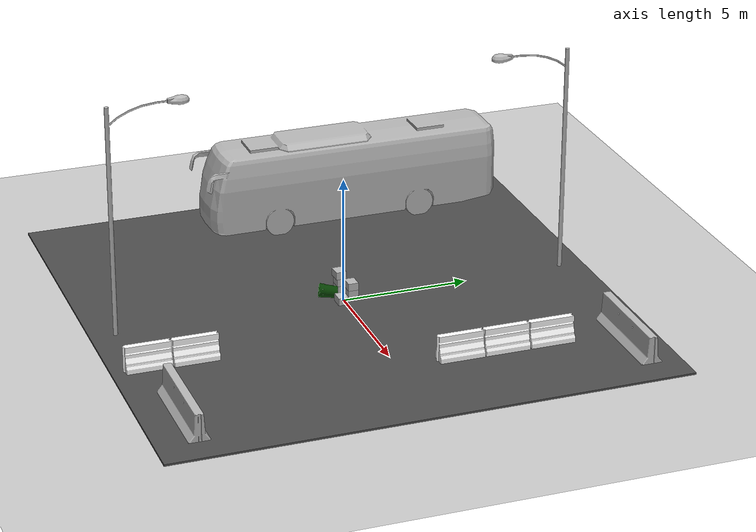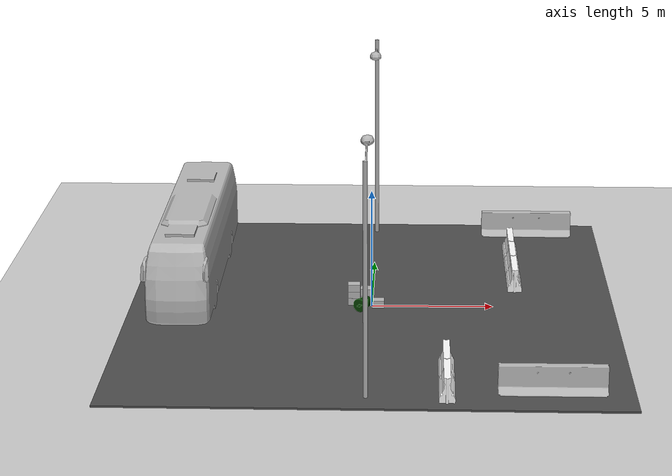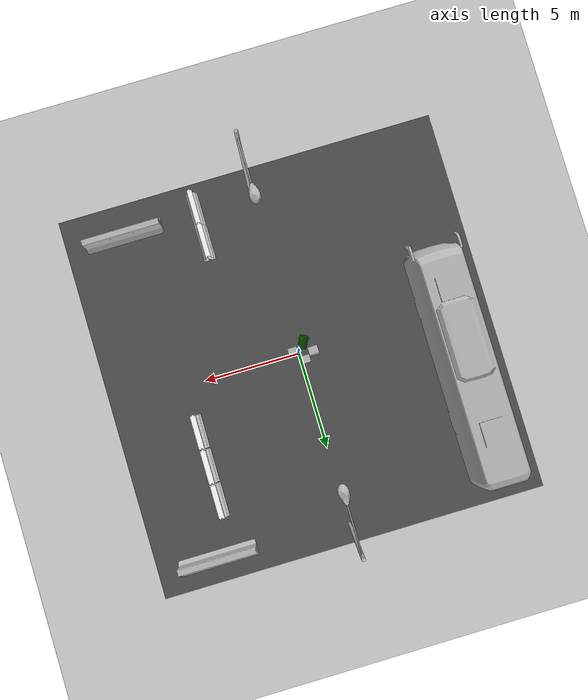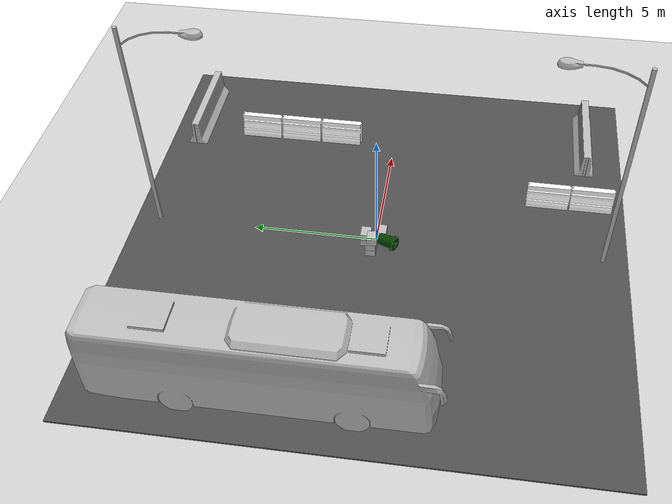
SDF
<sdf version="1.7">
 <world name="default">
  <light name="sun" type="directional">
   <pose>0 0 10 0 -0 0</pose>
   <diffuse>0.8 0.8 0.8 1</diffuse>
   <specular>0.2 0.2 0.2 1</specular>
   <attenuation>
    <range>1000</range>
    <constant>0.9</constant>
    <linear>0.01</linear>
    <quadratic>0.001</quadratic>
   </attenuation>
   <direction>-0.5 0.1 -0.9</direction>
   <spot><inner_angle>0</inner_angle><outer_angle>0</outer_angle><falloff>0</falloff></spot>
  </light>
  <model name="ground_plane">
   <static>1</static>
   <link name="link">
    <collision name="collision">
     <geometry><plane><normal>0 0 1</normal><size>100 100</size></plane></geometry>
     <surface>
      <contact><collide_bitmask>65535</collide_bitmask></contact>
      <friction><ode><mu>100</mu><mu2>50</mu2></ode></friction>
     </surface>
    </collision>
    <visual name="visual">
     <cast_shadows>0</cast_shadows>
     <geometry><plane><normal>0 0 1</normal><size>100 100</size></plane></geometry>
     <material>
      <script><uri>file://media/materials/scripts/gazebo.material</uri><name>Gazebo/Grey</name></script>
     </material>
    </visual>
   </link>
  </model>
  <gravity>0 0 -9.8</gravity>
  <magnetic_field>6e-06 2.3e-05 -4.2e-05</magnetic_field>
  <atmosphere type="adiabatic"/>
  <physics type="ode">
   <max_step_size>0.001</max_step_size>
   <real_time_factor>1</real_time_factor>
   <real_time_update_rate>1000</real_time_update_rate>
  </physics>
  <scene><ambient>0.4 0.4 0.4 1</ambient><background>0.7 0.7 0.7 1</background><shadows>1</shadows></scene>
  <spherical_coordinates>
   <surface_model>EARTH_WGS84</surface_model>
   <latitude_deg>0</latitude_deg>
   <longitude_deg>0</longitude_deg>
   <elevation>0</elevation>
   <heading_deg>0</heading_deg>
  </spherical_coordinates>
  <model name="asphalt_plane">
   <static>1</static>
   <link name="link">
    <collision name="collision"><geometry><box><size>20 20 0.1</size></box></geometry></collision>
    <visual name="visual">
     <cast_shadows>0</cast_shadows>
     <geometry><box><size>20 20 0.1</size></box></geometry>
     <material>
      <script>
       <uri>model://asphalt_plane/materials/scripts</uri>
       <uri>model://asphalt_plane/materials/textures</uri>
       <name>vrc/asphalt</name>
      </script>
     </material>
    </visual>
   </link>
  </model>
  <model name="bus">
   <static>1</static>
   <link name="link">
    <collision name="collision">
     <geometry><mesh><scale>0.01 0.01 0.01</scale><uri>model://bus/meshes/bus.obj</uri></mesh></geometry>
    </collision>
    <visual name="visual">
     <geometry><mesh><scale>0.01 0.01 0.01</scale><uri>model://bus/meshes/bus.obj</uri></mesh></geometry>
    </visual>
   </link>
   <pose>-7.7107 2.83044 0 0 -0 0</pose>
  </model>
  <model name="jersey_barrier">
   <static>1</static>
   <link name="link">
    <visual name="visual">
     <geometry><mesh><uri>model://jersey_barrier/meshes/jersey_barrier.dae</uri></mesh></geometry>
    </visual>
    <collision name="upright">
     <pose>0 0 0.5715 0 -0 0</pose>
     <geometry><box><size>4.06542 0.3063 1.143</size></box></geometry>
    </collision>
    <collision name="base">
     <pose>0 0 0.032258 0 -0 0</pose>
     <geometry><box><size>4.06542 0.8107 0.064516</size></box></geometry>
    </collision>
    <collision name="base2">
     <pose>0 0 0.1 0 -0 0</pose>
     <geometry><box><size>4.06542 0.65 0.1</size></box></geometry>
    </collision>
    <collision name="base3">
     <pose>0 0 0.2 0 -0 0</pose>
     <geometry><box><size>4.06542 0.5 0.1</size></box></geometry>
    </collision>
    <collision name="left-angle">
     <pose>0 -0.224 0.2401 0.9 -0 0</pose>
     <geometry><box><size>4.06542 0.5 0.064516</size></box></geometry>
    </collision>
    <collision name="right-angle">
     <pose>0 0.224 0.2401 -0.9 0 0</pose>
     <geometry><box><size>4.06542 0.5 0.064516</size></box></geometry>
    </collision>
   </link>
   <pose>6.8501 8.78743 0 0 -0 0</pose>
  </model>
  <model name="jersey_barrier_0">
   <static>1</static>
   <link name="link">
    <visual name="visual">
     <geometry><mesh><uri>model://jersey_barrier/meshes/jersey_barrier.dae</uri></mesh></geometry>
    </visual>
    <collision name="upright">
     <pose>0 0 0.5715 0 -0 0</pose>
     <geometry><box><size>4.06542 0.3063 1.143</size></box></geometry>
    </collision>
    <collision name="base">
     <pose>0 0 0.032258 0 -0 0</pose>
     <geometry><box><size>4.06542 0.8107 0.064516</size></box></geometry>
    </collision>
    <collision name="base2">
     <pose>0 0 0.1 0 -0 0</pose>
     <geometry><box><size>4.06542 0.65 0.1</size></box></geometry>
    </collision>
    <collision name="base3">
     <pose>0 0 0.2 0 -0 0</pose>
     <geometry><box><size>4.06542 0.5 0.1</size></box></geometry>
    </collision>
    <collision name="left-angle">
     <pose>0 -0.224 0.2401 0.9 -0 0</pose>
     <geometry><box><size>4.06542 0.5 0.064516</size></box></geometry>
    </collision>
    <collision name="right-angle">
     <pose>0 0.224 0.2401 -0.9 0 0</pose>
     <geometry><box><size>4.06542 0.5 0.064516</size></box></geometry>
    </collision>
   </link>
   <pose>6.91713 -8.40218 0 0 -0 0</pose>
  </model>
  <model name="Lamp Post">
   <static>1</static>
   <link name="link">
    <collision name="collision">
     <geometry><mesh><uri>model://lamp_post/meshes/lamp_post.dae</uri><scale>3 3 3</scale></mesh></geometry>
    </collision>
    <visual name="visual">
     <geometry><mesh><uri>model://lamp_post/meshes/lamp_post.dae</uri><scale>3 3 3</scale></mesh></geometry>
    </visual>
   </link>
   <pose>0 9 0 0 -0 0</pose>
  </model>
  <model name="Lamp Post_0">
   <static>1</static>
   <link name="link">
    <collision name="collision">
     <geometry><mesh><uri>model://lamp_post/meshes/lamp_post.dae</uri><scale>3 3 3</scale></mesh></geometry>
    </collision>
    <visual name="visual">
     <geometry><mesh><uri>model://lamp_post/meshes/lamp_post.dae</uri><scale>3 3 3</scale></mesh></geometry>
    </visual>
   </link>
   <pose>0 -9 0 0 -0 3.14</pose>
  </model>
  <model name="cardboard_box">
   <pose>-0.731995 0.077809 0.796996 2e-06 -0 0.030729</pose>
   <link name="link">
    <inertial>
     <mass>2</mass>
     <inertia>
      <ixx>0.0416667</ixx>
      <ixy>0</ixy>
      <ixz>0</ixz>
      <iyy>0.0566667</iyy>
      <iyz>0</iyz>
      <izz>0.0683333</izz>
     </inertia>
    </inertial>
    <collision name="collision">
     <geometry><box><size>0.5 0.4 0.3</size></box></geometry>
     <surface>
      <friction><ode><mu>1</mu><mu2>1</mu2></ode></friction>
      <contact><ode><kp>1e+07</kp><kd>1</kd><min_depth>0.001</min_depth><max_vel>0.1</max_vel></ode></contact>
     </surface>
    </collision>
    <visual name="visual">
     <pose>0 0 -0.15 0 -0 0</pose>
     <geometry>
      <mesh><uri>model://cardboard_box/meshes/cardboard_box.dae</uri><scale>1.25932 1.00745 0.755591</scale></mesh>
     </geometry>
    </visual>
   </link>
  </model>
  <model name="cardboard_box_0">
   <pose>-0.740982 0.119774 0.497997 1e-06 -0 -3.4e-05</pose>
   <link name="link">
    <inertial>
     <mass>2</mass>
     <inertia>
      <ixx>0.0416667</ixx>
      <ixy>0</ixy>
      <ixz>0</ixz>
      <iyy>0.0566667</iyy>
      <iyz>0</iyz>
      <izz>0.0683333</izz>
     </inertia>
    </inertial>
    <collision name="collision">
     <geometry><box><size>0.5 0.4 0.3</size></box></geometry>
     <surface>
      <friction><ode><mu>1</mu><mu2>1</mu2></ode></friction>
      <contact><ode><kp>1e+07</kp><kd>1</kd><min_depth>0.001</min_depth><max_vel>0.1</max_vel></ode></contact>
     </surface>
    </collision>
    <visual name="visual">
     <pose>0 0 -0.15 0 -0 0</pose>
     <geometry>
      <mesh><uri>model://cardboard_box/meshes/cardboard_box.dae</uri><scale>1.25932 1.00745 0.755591</scale></mesh>
     </geometry>
    </visual>
   </link>
  </model>
  <model name="cardboard_box_1">
   <pose>-0.221646 0.393968 0.497998 0 -0 2e-06</pose>
   <link name="link">
    <inertial>
     <mass>2</mass>
     <inertia>
      <ixx>0.0416667</ixx>
      <ixy>0</ixy>
      <ixz>0</ixz>
      <iyy>0.0566667</iyy>
      <iyz>0</iyz>
      <izz>0.0683333</izz>
     </inertia>
    </inertial>
    <collision name="collision">
     <geometry><box><size>0.5 0.4 0.3</size></box></geometry>
     <surface>
      <friction><ode><mu>1</mu><mu2>1</mu2></ode></friction>
      <contact><ode><kp>1e+07</kp><kd>1</kd><min_depth>0.001</min_depth><max_vel>0.1</max_vel></ode></contact>
     </surface>
    </collision>
    <visual name="visual">
     <pose>0 0 -0.15 0 -0 0</pose>
     <geometry>
      <mesh><uri>model://cardboard_box/meshes/cardboard_box.dae</uri><scale>1.25932 1.00745 0.755591</scale></mesh>
     </geometry>
    </visual>
   </link>
  </model>
  <model name="cardboard_box_2">
   <pose>-0.226028 0.393916 0.198999 0 -0 2e-06</pose>
   <link name="link">
    <inertial>
     <mass>2</mass>
     <inertia>
      <ixx>0.0416667</ixx>
      <ixy>0</ixy>
      <ixz>0</ixz>
      <iyy>0.0566667</iyy>
      <iyz>0</iyz>
      <izz>0.0683333</izz>
     </inertia>
    </inertial>
    <collision name="collision">
     <geometry><box><size>0.5 0.4 0.3</size></box></geometry>
     <surface>
      <friction><ode><mu>1</mu><mu2>1</mu2></ode></friction>
      <contact><ode><kp>1e+07</kp><kd>1</kd><min_depth>0.001</min_depth><max_vel>0.1</max_vel></ode></contact>
     </surface>
    </collision>
    <visual name="visual">
     <pose>0 0 -0.15 0 -0 0</pose>
     <geometry>
      <mesh><uri>model://cardboard_box/meshes/cardboard_box.dae</uri><scale>1.25932 1.00745 0.755591</scale></mesh>
     </geometry>
    </visual>
   </link>
  </model>
  <model name="cardboard_box_3">
   <pose>-0.740801 0.119141 0.198999 0 -0 1.7e-05</pose>
   <link name="link">
    <inertial>
     <mass>2</mass>
     <inertia>
      <ixx>0.0416667</ixx>
      <ixy>0</ixy>
      <ixz>0</ixz>
      <iyy>0.0566667</iyy>
      <iyz>0</iyz>
      <izz>0.0683333</izz>
     </inertia>
    </inertial>
    <collision name="collision">
     <geometry><box><size>0.5 0.4 0.3</size></box></geometry>
     <surface>
      <friction><ode><mu>1</mu><mu2>1</mu2></ode></friction>
      <contact><ode><kp>1e+07</kp><kd>1</kd><min_depth>0.001</min_depth><max_vel>0.1</max_vel></ode></contact>
     </surface>
    </collision>
    <visual name="visual">
     <pose>0 0 -0.15 0 -0 0</pose>
     <geometry>
      <mesh><uri>model://cardboard_box/meshes/cardboard_box.dae</uri><scale>1.25932 1.00745 0.755591</scale></mesh>
     </geometry>
    </visual>
   </link>
  </model>
  <model name="cardboard_box_4">
   <pose>0.266091 -0.174466 0.199 0 -0 0</pose>
   <link name="link">
    <inertial>
     <mass>2</mass>
     <inertia>
      <ixx>0.0416667</ixx>
      <ixy>0</ixy>
      <ixz>0</ixz>
      <iyy>0.0566667</iyy>
      <iyz>0</iyz>
      <izz>0.0683333</izz>
     </inertia>
    </inertial>
    <collision name="collision">
     <geometry><box><size>0.5 0.4 0.3</size></box></geometry>
     <surface>
      <friction><ode><mu>1</mu><mu2>1</mu2></ode></friction>
      <contact><ode><kp>1e+07</kp><kd>1</kd><min_depth>0.001</min_depth><max_vel>0.1</max_vel></ode></contact>
     </surface>
    </collision>
    <visual name="visual">
     <pose>0 0 -0.15 0 -0 0</pose>
     <geometry>
      <mesh><uri>model://cardboard_box/meshes/cardboard_box.dae</uri><scale>1.25932 1.00745 0.755591</scale></mesh>
     </geometry>
    </visual>
   </link>
  </model>
  <model name="drc_practice_white_jersey_barrier">
   <static>1</static>
   <link name="link">
    <visual name="visual">
     <geometry>
      <mesh><uri>model://drc_practice_white_jersey_barrier/meshes/jersey_barrier.dae</uri></mesh>
     </geometry>
    </visual>
    <collision name="collision">
     <geometry>
      <mesh><uri>model://drc_practice_white_jersey_barrier/meshes/jersey_barrier.dae</uri></mesh>
     </geometry>
    </collision>
   </link>
   <pose>6 6 0 0 -0 0</pose>
  </model>
  <model name="drc_practice_white_jersey_barrier_0">
   <static>1</static>
   <link name="link">
    <visual name="visual">
     <geometry>
      <mesh><uri>model://drc_practice_white_jersey_barrier/meshes/jersey_barrier.dae</uri></mesh>
     </geometry>
    </visual>
    <collision name="collision">
     <geometry>
      <mesh><uri>model://drc_practice_white_jersey_barrier/meshes/jersey_barrier.dae</uri></mesh>
     </geometry>
    </collision>
   </link>
   <pose>6 4.2 0 0 -0 0</pose>
  </model>
  <model name="drc_practice_white_jersey_barrier_1">
   <static>1</static>
   <link name="link">
    <visual name="visual">
     <geometry>
      <mesh><uri>model://drc_practice_white_jersey_barrier/meshes/jersey_barrier.dae</uri></mesh>
     </geometry>
    </visual>
    <collision name="collision">
     <geometry>
      <mesh><uri>model://drc_practice_white_jersey_barrier/meshes/jersey_barrier.dae</uri></mesh>
     </geometry>
    </collision>
   </link>
   <pose>6 2.4 0 0 -0 0</pose>
  </model>
  <model name="drc_practice_white_jersey_barrier_2">
   <static>1</static>
   <link name="link">
    <visual name="visual">
     <geometry>
      <mesh><uri>model://drc_practice_white_jersey_barrier/meshes/jersey_barrier.dae</uri></mesh>
     </geometry>
    </visual>
    <collision name="collision">
     <geometry>
      <mesh><uri>model://drc_practice_white_jersey_barrier/meshes/jersey_barrier.dae</uri></mesh>
     </geometry>
    </collision>
   </link>
   <pose>3 -8.6 0 0 -0 0</pose>
  </model>
  <model name="drc_practice_white_jersey_barrier_3">
   <static>1</static>
   <link name="link">
    <visual name="visual">
     <geometry>
      <mesh><uri>model://drc_practice_white_jersey_barrier/meshes/jersey_barrier.dae</uri></mesh>
     </geometry>
    </visual>
    <collision name="collision">
     <geometry>
      <mesh><uri>model://drc_practice_white_jersey_barrier/meshes/jersey_barrier.dae</uri></mesh>
     </geometry>
    </collision>
   </link>
   <pose>3 -6.8 0 0 -0 0</pose>
  </model>
  <model name="first_2015_trash_can">
   <link name="link">
    <inertial>
     <pose>0 0 0.3683 0 -0 0</pose>
     <mass>4.83076</mass>
     <inertia>
      <ixx>0.281534</ixx>
      <ixy>0</ixy>
      <ixz>0</ixz>
      <iyy>0.281534</iyy>
      <iyz>0</iyz>
      <izz>0.126223</izz>
     </inertia>
    </inertial>
    <visual name="visual">
     <geometry><mesh><uri>model://first_2015_trash_can/meshes/trash_can.dae</uri></mesh></geometry>
    </visual>
    <collision name="collision">
     <geometry><mesh><uri>model://first_2015_trash_can/meshes/trash_can.dae</uri></mesh></geometry>
    </collision>
   </link>
   <pose>-0.199487 -0.170642 0.278385 -1.32762 -1.23139 2.49309</pose>
  </model>
 </world>
</sdf>
